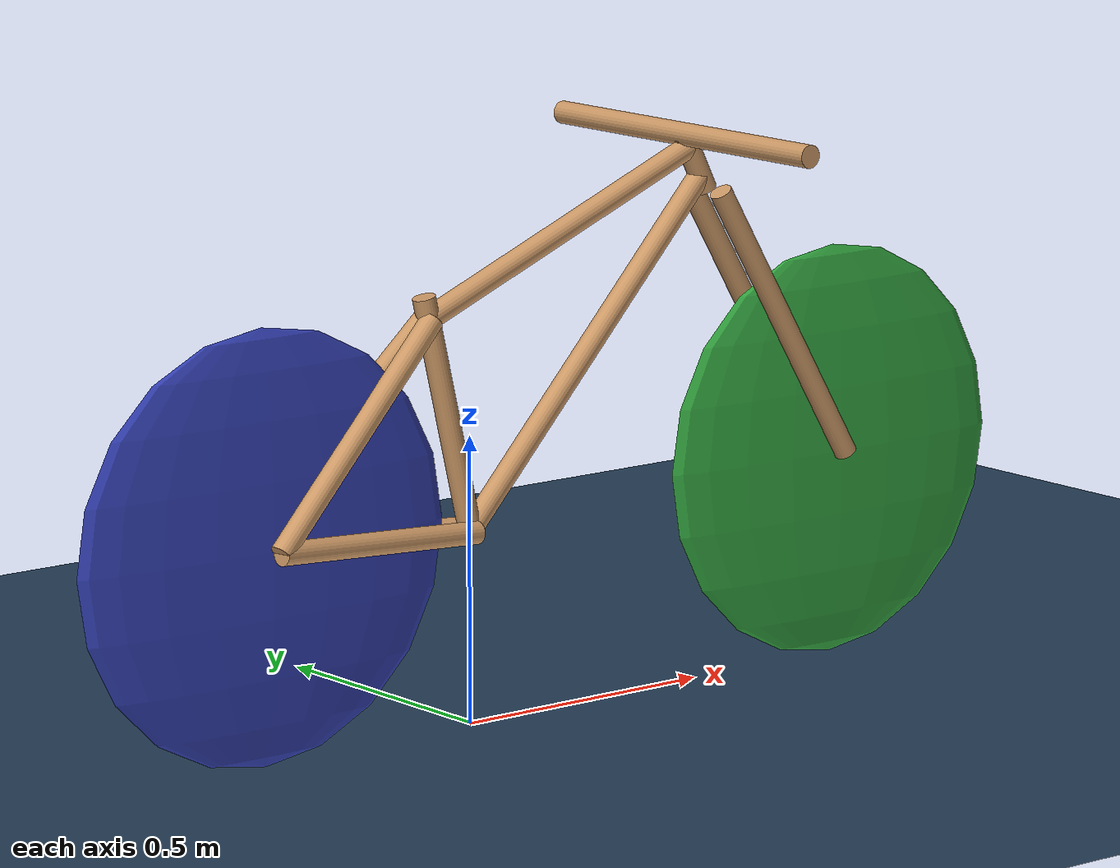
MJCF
<mujoco>
      <asset>
        <texture name="grid" type="2d" builtin="checker" rgb1=".1 .2 .3" rgb2=".2 .3 .4" width="512" height="512"/>
        <texture name="grid_blue" type="2d" builtin="checker" rgb1=".2 .2 1" rgb2=".2 .3 .4" width="512" height="512"/>
        <texture name="grid_green" type="2d" builtin="checker" rgb1=".2 1 .1" rgb2=".2 .3 .4" width="231" height="231"/>

        <material name="grid" texture="grid" texrepeat="2 2" texuniform="true" reflectance="0.2"/>
        <material name="grid_blue" texture="grid_blue" texrepeat="2 2" texuniform="true"/>
        <material name="grid_green" texture="grid_green" texrepeat="2 2" texuniform="true"/>

        <material name="frame" rgba="0.8 0.6 0.4 1"/>
    </asset>

    <worldbody>
        <geom name="floor" type="plane" size="32 16 .01" pos="0 0  0" material="grid"/>

        <body name="frame" pos="0 0 .337">
            <freejoint name="root"/>
            <camera name="follow" pos="-0.37 -2 1.5" mode="trackcom" xyaxes="0.78  -0.13 0 0.27 0.33 0.6"/>
            <geom name="chainstay_R"     type="cylinder" fromto=" 0.0     -0.02   0.0    -0.43   -0.05   0.03" size=".02" material="frame"/>
            <geom name="chainstay_L"     type="cylinder" fromto=" 0.0      0.02   0.0    -0.43    0.05   0.03" size=".02" material="frame"/>
            <geom name="chainstay_top_R" type="cylinder" fromto="-0.086   -0.01   0.374  -0.43   -0.05   0.03" size=".02" material="frame"/>
            <geom name="chainstay_top_L" type="cylinder" fromto="-0.086    0.01   0.374  -0.43    0.05   0.03" size=".02" material="frame"/>
            <geom name="seattube"        type="cylinder" fromto="-0.096    0.0    0.412   0.0     0.0    0.0" size=".02" material="frame"/>
            <geom name="downtube"        type="cylinder" fromto=" 0.0      0.0    0.0     0.507   0.0    0.558" size=".02" material="frame"/>
            <geom name="toptube"         type="cylinder" fromto="-0.086    0.0    0.374   0.481   0.0    0.609" size=".02" material="frame"/>
            <geom name="headtube"        type="cylinder" fromto=" 0.469    0.0    0.633   0.520   0.0    0.532" size=".02" material="frame"/>

            <body name="back_wheel">
                <joint name="back_wheel" type="hinge" axis="0 1 0" pos="-.43 0 .03"/>
                <geom name="wheel1" type="ellipsoid" size=".37 .03 .37" pos="-.43 0 .03" material="grid_blue" />
                <inertial pos="-.43 0 .03" mass="2" diaginertia=" 0.169 0.2525 0.169"/>

            </body>

            <body name="steering">
                <joint name="steering" type="hinge" axis="0 0 1" pos="0.469 0 0.633"/>
                <geom name="handlebars"      type="cylinder" fromto=" 0.469   -0.33   0.633   0.469   0.33   0.633" size=".02" material="frame"/>
                <geom name="fork_R"          type="cylinder" fromto=" 0.520   -0.04   0.532   0.817  -0.04   0.033" size=".02" material="frame"/>
                <geom name="fork_L"          type="cylinder" fromto=" 0.520    0.04   0.532   0.817   0.04   0.033" size=".02" material="frame"/>
                <body name="front_wheel" >
                    <joint name="front_wheel" type="hinge" axis="0 1 0" pos=".817 0 .033"/>
                    <geom name="wheel2" type="ellipsoid" size=".37 .03 .37" pos=".817 0 .033" material="grid_green"/>
                    <inertial pos=".817 0 .033" mass="2" diaginertia=" 0.169 0.2525 0.169"/>
                </body>
            </body>

        </body>
    </worldbody>
</mujoco>
